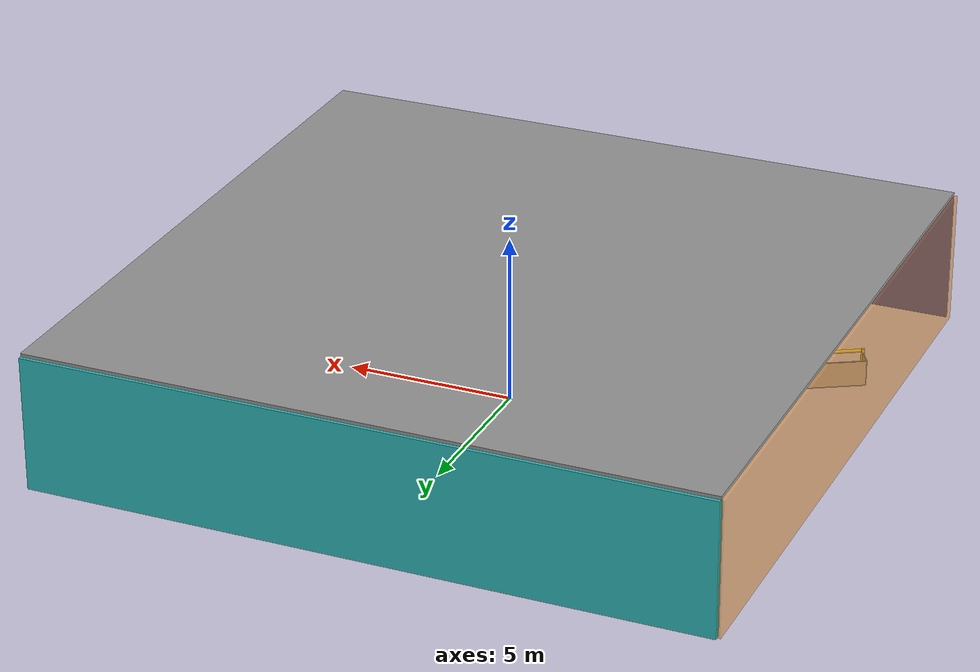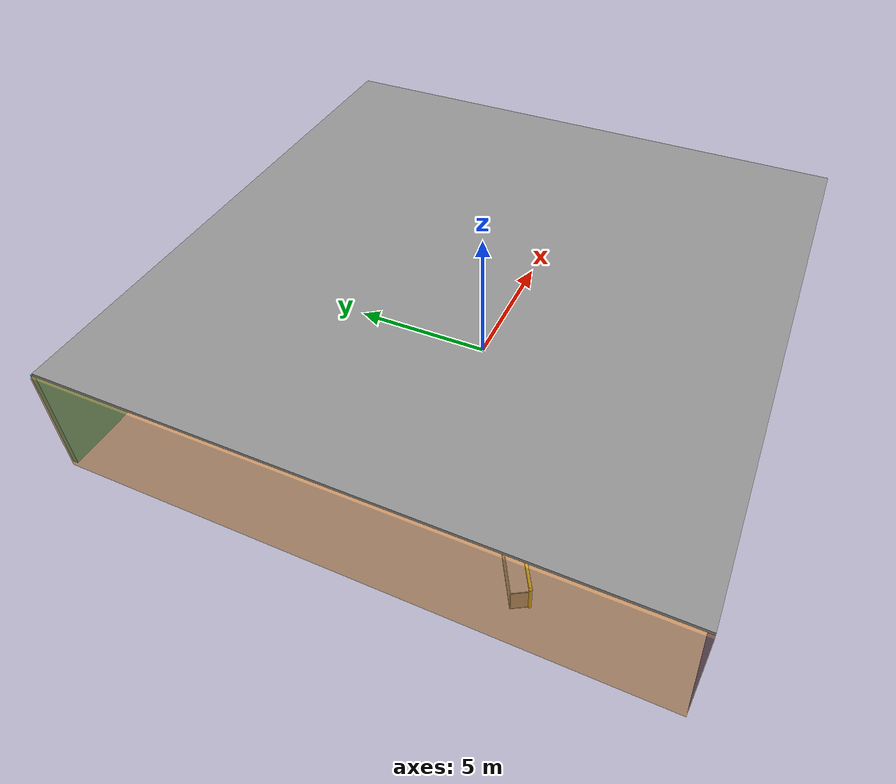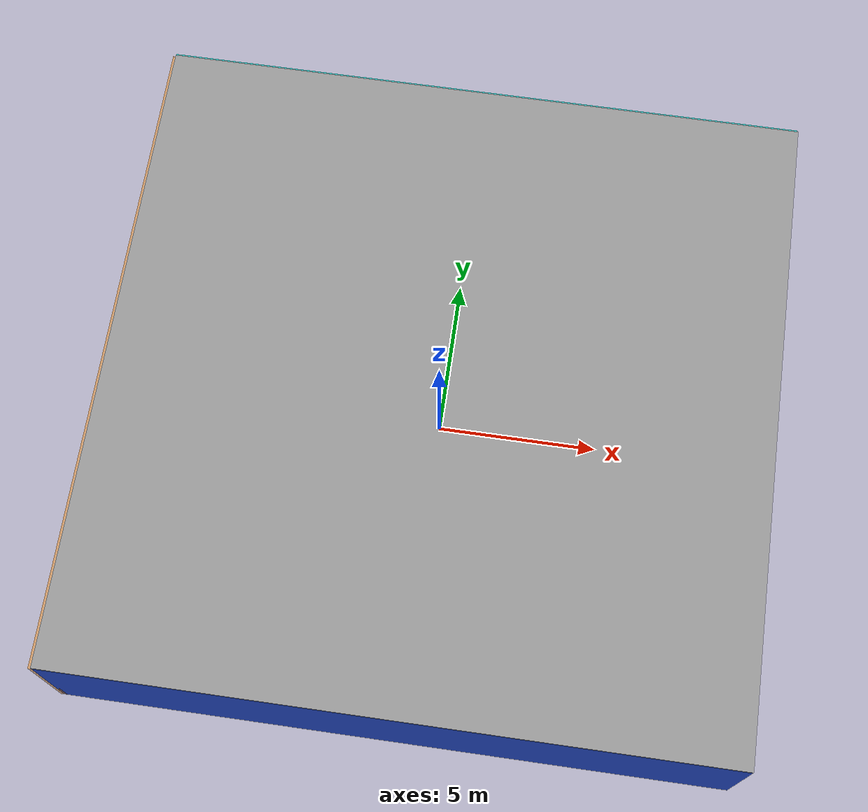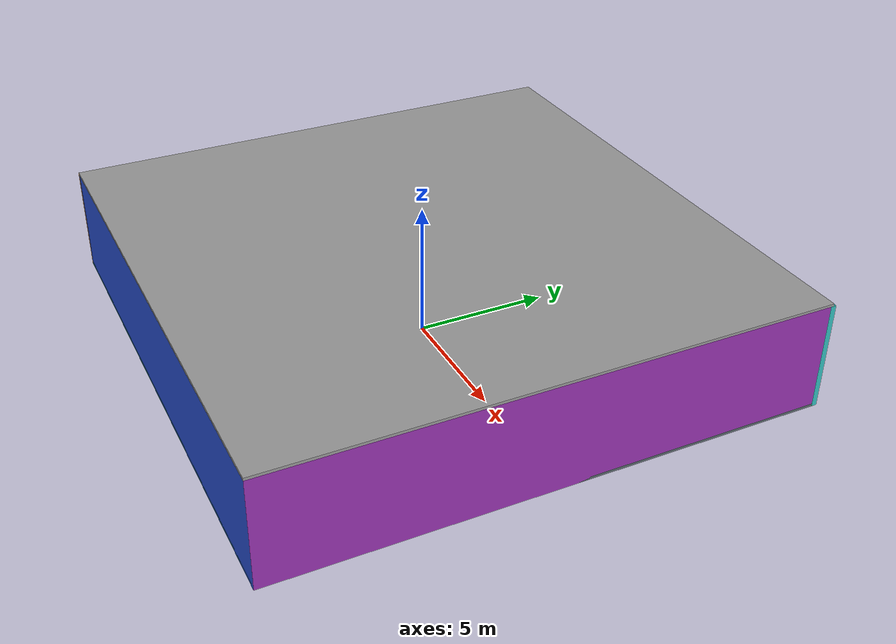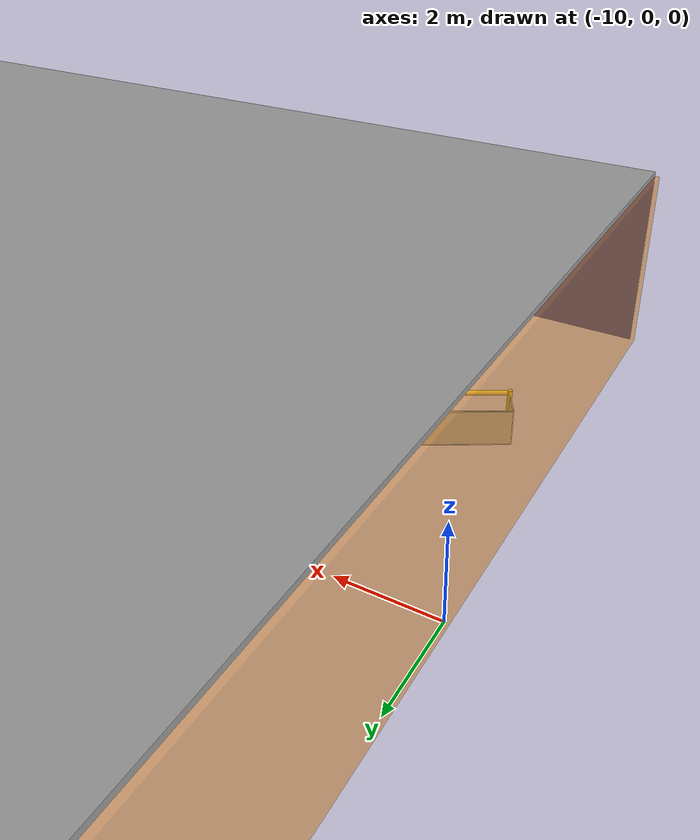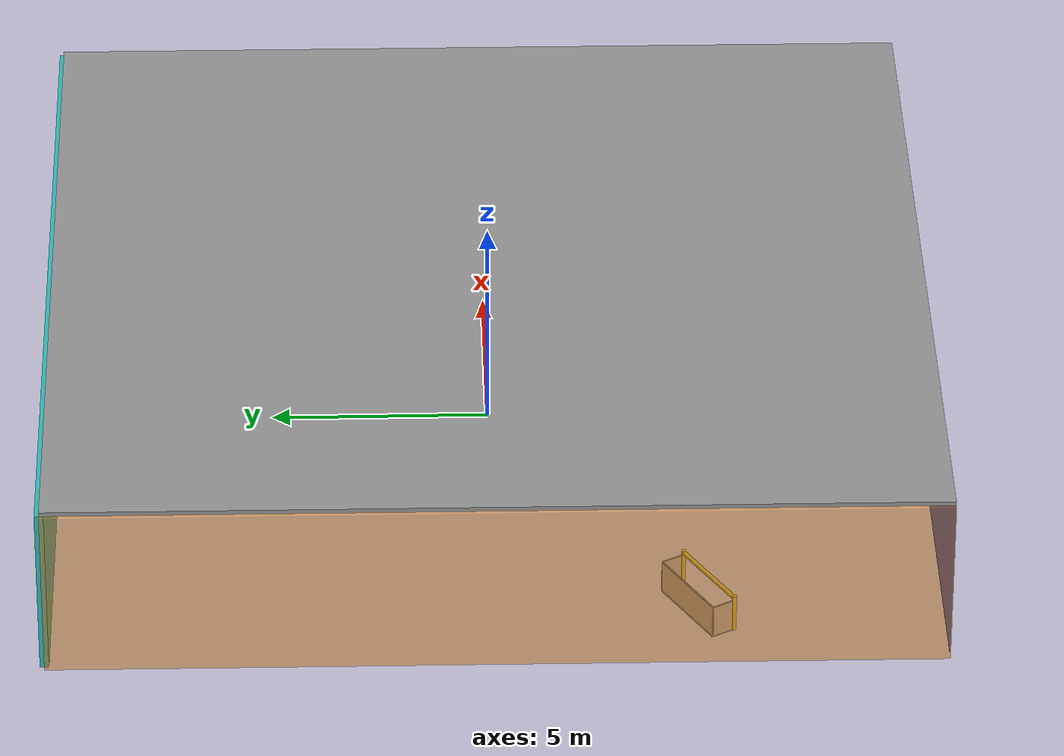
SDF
<sdf version="1.4">
 <world name="default">
  <physics type="ode">
   <max_step_size>0.001</max_step_size>
   <real_time_factor>1</real_time_factor>
   <real_time_update_rate>1000</real_time_update_rate>
   <gravity>0 0 -9.8</gravity>
  </physics>
  <scene><ambient>0.4 0.4 0.4 1</ambient><background>0.7 0.7 0.7 1</background><shadows>1</shadows></scene>
  <model name="Surrounding">
   <static>1</static>
   <link name="Ceiling">
    <collision name="Ceiling_Collision"><geometry><box><size>20 20 0.1</size></box></geometry></collision>
    <visual name="Ceiling_Visual">
     <geometry><box><size>20 20 0.1</size></box></geometry>
     <material>
      <script><uri>file://media/materials/scripts/gazebo.material</uri><name>Gazebo/Grey</name></script>
     </material>
    </visual>
    <pose>0 0 4.05 0 0 0</pose>
   </link>
   <link name="Wall_South">
    <collision name="Wall_South_Collision">
     <geometry><box><size>20 0 4</size></box></geometry>
     <pose>0 0 2 0 -0 0</pose>
    </collision>
    <visual name="Wall_South_Visual">
     <pose>0 0 2 0 -0 0</pose>
     <geometry><box><size>20 0 4</size></box></geometry>
     <material>
      <script><uri>file://media/materials/scripts/gazebo.material</uri><name>Gazebo/Blue</name></script>
     </material>
    </visual>
    <velocity_decay><linear>0</linear><angular>0</angular></velocity_decay>
    <pose>0 -10 0 0 -0 0</pose>
   </link>
   <link name="Wall_East">
    <collision name="Wall_21_Collision">
     <geometry><box><size>20 0 4</size></box></geometry>
     <pose>0 0 2 0 -0 0</pose>
    </collision>
    <visual name="Wall_21_Visual">
     <pose>0 0 2 0 -0 0</pose>
     <geometry><box><size>20 0 4</size></box></geometry>
     <material>
      <script><uri>file://media/materials/scripts/gazebo.material</uri><name>Gazebo/PurpleGlow</name></script>
     </material>
    </visual>
    <velocity_decay><linear>0</linear><angular>0</angular></velocity_decay>
    <pose>10 0 0 0 -0 1.5708</pose>
   </link>
   <link name="Wall_North">
    <collision name="Wall_22_Collision">
     <geometry><box><size>20 0.2 4</size></box></geometry>
     <pose>0 0 2 0 -0 0</pose>
    </collision>
    <visual name="Wall_22_Visual">
     <pose>0 0 2 0 -0 0</pose>
     <geometry><box><size>20 0.2 4</size></box></geometry>
     <material>
      <script><uri>file://media/materials/scripts/gazebo.material</uri><name>Gazebo/TurquoiseGlow</name></script>
     </material>
    </visual>
    <velocity_decay><linear>0</linear><angular>0</angular></velocity_decay>
    <pose>0 10 0 0 -0 0</pose>
   </link>
   <link name="Wall_West">
    <collision name="Wall_23_Collision">
     <geometry><box><size>20 0.2 4</size></box></geometry>
     <pose>0 0 2 0 -0 0</pose>
    </collision>
    <visual name="Wall_23_Visual">
     <pose>0 0 2 0 -0 0</pose>
     <geometry><box><size>20 0.2 4</size></box></geometry>
     <material>
      <script>
       <uri>file://media/materials/scripts/gazebo.material</uri>
       <name>Gazebo/OrangeTransparent</name>
      </script>
     </material>
    </visual>
    <velocity_decay><linear>0</linear><angular>0</angular></velocity_decay>
    <pose>-10 0 0 0 0 -1.5708</pose>
   </link>
   <link name="Ground_link">
    <collision name="collision">
     <pose>0 0 .05 0 -0 0</pose>
     <geometry><box><size>20 20 0.1</size></box></geometry>
    </collision>
    <visual name="visual">
     <pose>0 0 .05 0 -0 0</pose>
     <geometry><box><size>20 20 0.1</size></box></geometry>
     <material>
      <script><uri>file://media/materials/scripts/gazebo.material</uri><name>Gazebo/GreenTransparent</name></script>
     </material>
    </visual>
   </link>
   <static>1</static>
  </model>
  <spherical_coordinates>
   <surface_model>EARTH_WGS84</surface_model>
   <latitude_deg>0</latitude_deg>
   <longitude_deg>0</longitude_deg>
   <elevation>0</elevation>
   <heading_deg>0</heading_deg>
  </spherical_coordinates>
  <light name="lightball_0" type="diffuse">
   <diffuse>0.8 0.8 0.8 1</diffuse>
   <specular>0.2 0.2 0.2 1</specular>
   <attenuation>
    <range>100</range>
    <constant>0.7</constant>
    <linear>0.01</linear>
    <quadratic>0.001</quadratic>
   </attenuation>
   <direction>-0.5 0.1 -0.9</direction>
   <pose>-0.124362235805 -3.78643455841 1.44246770245 0 0 0</pose>
  </light>
  <light name="lightball_1" type="diffuse">
   <diffuse>0.8 0.8 0.8 1</diffuse>
   <specular>0.2 0.2 0.2 1</specular>
   <attenuation>
    <range>100</range>
    <constant>0.7</constant>
    <linear>0.01</linear>
    <quadratic>0.001</quadratic>
   </attenuation>
   <direction>-0.5 0.1 -0.9</direction>
   <pose>-0.21622997855 -2.53523954784 3.54873695443 0 0 0</pose>
  </light>
  <light name="lightball_2" type="diffuse">
   <diffuse>0.8 0.8 0.8 1</diffuse>
   <specular>0.2 0.2 0.2 1</specular>
   <attenuation>
    <range>100</range>
    <constant>0.7</constant>
    <linear>0.01</linear>
    <quadratic>0.001</quadratic>
   </attenuation>
   <direction>-0.5 0.1 -0.9</direction>
   <pose>0.908964830927 8.85819410974 2.97558850196 0 0 0</pose>
  </light>
  <light name="lightball_3" type="diffuse">
   <diffuse>0.8 0.8 0.8 1</diffuse>
   <specular>0.2 0.2 0.2 1</specular>
   <attenuation>
    <range>100</range>
    <constant>0.7</constant>
    <linear>0.01</linear>
    <quadratic>0.001</quadratic>
   </attenuation>
   <direction>-0.5 0.1 -0.9</direction>
   <pose>7.8656157583 8.09597167013 1.71378221516 0 0 0</pose>
  </light>
  <light name="lightball_4" type="diffuse">
   <diffuse>0.8 0.8 0.8 1</diffuse>
   <specular>0.2 0.2 0.2 1</specular>
   <attenuation>
    <range>100</range>
    <constant>0.7</constant>
    <linear>0.01</linear>
    <quadratic>0.001</quadratic>
   </attenuation>
   <direction>-0.5 0.1 -0.9</direction>
   <pose>-3.46769039821 8.6038369461 3.69763435529 0 0 0</pose>
  </light>
  <light name="lightball_5" type="diffuse">
   <diffuse>0.8 0.8 0.8 1</diffuse>
   <specular>0.2 0.2 0.2 1</specular>
   <attenuation>
    <range>100</range>
    <constant>0.7</constant>
    <linear>0.01</linear>
    <quadratic>0.001</quadratic>
   </attenuation>
   <direction>-0.5 0.1 -0.9</direction>
   <pose>6.68462152128 -0.153116876492 0.738698640953 0 0 0</pose>
  </light>
  <include>
   <uri>model://robocup_3Dsim_goal</uri>
   <pose>-7.95076074098 -4.74993997854 0 0 0 2.09224950268</pose>
  </include>
  <include><uri>model://cabinet</uri><pose>3.79081260361 -4.92137000943 0 0 0 1.09506805476</pose></include>
 </world>
</sdf>

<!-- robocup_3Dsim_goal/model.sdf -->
<sdf version="1.5">
  <model name="robocup_3d_goal">
    <static>true</static>
    <link name="left_post">
      <pose>0 1.05 0.45 0 0 0</pose>
      <collision name="collision">
        <geometry>
          <cylinder>
            <radius>0.05</radius>
            <length>0.9</length>
          </cylinder>
        </geometry>
      </collision>
      <visual name="visual">
        <geometry>
          <cylinder>
            <radius>0.05</radius>
            <length>0.9</length>
          </cylinder>
        </geometry>
        <material>
          <script>
            <uri>file://media/materials/scripts/gazebo.material</uri>
            <name>Gazebo/ZincYellow</name>
          </script>
        </material>
      </visual>
    </link>
    <link name="left_support_horiz_lower">
      <pose>0.30 1.05 0.01 0 0 0</pose>
      <collision name="collision">
        <geometry>
          <box>
            <size>0.50 0.02 0.02</size>
          </box>
        </geometry>
      </collision>
      <visual name="visual">
        <geometry>
          <box>
            <size>0.50 0.02 0.02</size>
          </box>
        </geometry>
        <material>
          <script>
            <uri>file://media/materials/scripts/gazebo.material</uri>
            <name>Gazebo/White</name>
          </script>
        </material>
      </visual>
    </link>
    <link name="left_support_horiz_upper">
      <pose>0.30 1.05 0.79 0 0 0</pose>
      <collision name="collision">
        <geometry>
          <box>
            <size>0.50 0.02 0.02</size>
          </box>
        </geometry>
      </collision>
      <visual name="visual">
        <geometry>
          <box>
            <size>0.50 0.02 0.02</size>
          </box>
        </geometry>
        <material>
          <script>
            <uri>file://media/materials/scripts/gazebo.material</uri>
            <name>Gazebo/White</name>
          </script>
        </material>
      </visual>
    </link>
    <link name="left_support_vertical">
      <pose>0.56 1.05 0.4 0 1.5708 0</pose>
      <collision name="collision">
        <geometry>
          <box>
            <size>0.80 0.02 0.02</size>
          </box>
        </geometry>
      </collision>
      <visual name="visual">
        <geometry>
          <box>
            <size>0.80 0.02 0.02</size>
          </box>
        </geometry>
        <material>
          <script>
            <uri>file://media/materials/scripts/gazebo.material</uri>
            <name>Gazebo/White</name>
          </script>
        </material>
      </visual>
    </link>
    <link name="right_support_horiz_lower">
      <pose>0.30 -1.05 0.01 0 0 0</pose>
      <collision name="collision">
        <geometry>
          <box>
            <size>0.50 0.02 0.02</size>
          </box>
        </geometry>
      </collision>
      <visual name="visual">
        <geometry>
          <box>
            <size>0.50 0.02 0.02</size>
          </box>
        </geometry>
        <material>
          <script>
            <uri>file://media/materials/scripts/gazebo.material</uri>
            <name>Gazebo/White</name>
          </script>
        </material>
      </visual>
    </link>
    <link name="right_support_horiz_upper">
      <pose>0.30 -1.05 0.79 0 0 0</pose>
      <collision name="collision">
        <geometry>
          <box>
            <size>0.50 0.02 0.02</size>
          </box>
        </geometry>
      </collision>
      <visual name="visual">
        <geometry>
          <box>
            <size>0.50 0.02 0.02</size>
          </box>
        </geometry>
        <material>
          <script>
            <uri>file://media/materials/scripts/gazebo.material</uri>
            <name>Gazebo/White</name>
          </script>
        </material>
      </visual>
    </link>
    <link name="right_support_vertical">
      <pose>0.56 -1.05 0.4 0 1.5708 0</pose>
      <collision name="collision">
        <geometry>
          <box>
            <size>0.80 0.02 0.02</size>
          </box>
        </geometry>
      </collision>
      <visual name="visual">
        <geometry>
          <box>
            <size>0.80 0.02 0.02</size>
          </box>
        </geometry>
        <material>
          <script>
            <uri>file://media/materials/scripts/gazebo.material</uri>
            <name>Gazebo/White</name>
          </script>
        </material>
      </visual>
    </link>
    <link name="center_support_horiz_lower">
      <pose>0.56 0 0.01 0 1.5708 0</pose>
      <collision name="collision">
        <geometry>
          <box>
            <size>0.02 2.08 0.02</size>
          </box>
        </geometry>
      </collision>
      <visual name="visual">
        <geometry>
          <box>
            <size>0.02 2.08 0.02</size>
          </box>
        </geometry>
        <material>
          <script>
            <uri>file://media/materials/scripts/gazebo.material</uri>
            <name>Gazebo/White</name>
          </script>
        </material>
      </visual>
    </link>
    <link name="center_support_horiz_upper">
      <pose>0.56 0 0.79 0 1.5708 0</pose>
      <collision name="collision">
        <geometry>
          <box>
            <size>0.02 2.08 0.02</size>
          </box>
        </geometry>
      </collision>
      <visual name="visual">
        <geometry>
          <box>
            <size>0.02 2.08 0.02</size>
          </box>
        </geometry>
        <material>
          <script>
            <uri>file://media/materials/scripts/gazebo.material</uri>
            <name>Gazebo/White</name>
          </script>
        </material>
      </visual>
    </link>
    <link name="right_post">
      <pose>0 -1.05 0.45 0 0 0</pose>
      <collision name="collision">
        <geometry>
          <cylinder>
            <radius>0.05</radius>
            <length>0.9</length>
          </cylinder>
        </geometry>
      </collision>
      <visual name="visual">
        <geometry>
          <cylinder>
            <radius>0.05</radius>
            <length>0.9</length>
          </cylinder>
        </geometry>
        <material>
          <script>
            <uri>file://media/materials/scripts/gazebo.material</uri>
            <name>Gazebo/ZincYellow</name>
          </script>
        </material>
      </visual>
    </link>
    <link name="crossbar">
      <pose>0 0 0.85 1.57 1.57 0</pose>
      <collision name="collision">
        <geometry>
          <cylinder>
            <radius>0.05</radius>
            <length>2.0</length>
          </cylinder>
        </geometry>
      </collision>
      <visual name="visual">
        <geometry>
          <cylinder>
            <radius>0.05</radius>
            <length>2.0</length>
          </cylinder>
        </geometry>
        <material>
          <script>
            <uri>file://media/materials/scripts/gazebo.material</uri>
            <name>Gazebo/ZincYellow</name>
          </script>
        </material>
      </visual>
    </link>
    <link name="center_net">
      <pose>0.56 0 0.40 0 0 0</pose>
      <collision name="collision">
        <geometry>
          <box>
            <size>0.01 2.1 0.80</size>
          </box>
        </geometry>
      </collision>
      <visual name="visual">
        <geometry>
          <box>
            <size>0.01 2.1 0.80</size>
          </box>
        </geometry>
        <material>
          <script>
            <uri>model://../model_source/models/robocup09_spl_field/materials/scripts/</uri>
            <uri>model://../model_source/models/robocup09_spl_field/materials/textures/</uri>
            <name>RoboCup/Net</name>
          </script>
        </material>
      </visual>
    </link>
    <link name="left_net">
      <pose>0.30 1.05 0.40 0 0 0</pose>
      <collision name="collision">
        <geometry>
          <box>
            <size>0.50 0.01 0.76</size>
          </box>
        </geometry>
      </collision>
      <visual name="visual">
        <geometry>
          <box>
            <size>0.50 0.01 0.76</size>
          </box>
        </geometry>
        <material>
          <script>
            <uri>model://../model_source/models/robocup09_spl_field/materials/scripts/</uri>
            <uri>model://../model_source/models/robocup09_spl_field/materials/textures/</uri>
            <name>RoboCup/Net</name>
          </script>
        </material>
      </visual>
    </link>
    <link name="right_net">
      <pose>0.30 -1.05 0.40 0 0 0</pose>
      <collision name="collision">
        <geometry>
          <box>
            <size>0.50 0.01 0.76</size>
          </box>
        </geometry>
      </collision>
      <visual name="visual">
        <geometry>
          <box>
            <size>0.50 0.01 0.76</size>
          </box>
        </geometry>
        <material>
          <script>
            <uri>model://../model_source/models/robocup09_spl_field/materials/scripts/</uri>
            <uri>model://../model_source/models/robocup09_spl_field/materials/textures/</uri>
            <name>RoboCup/Net</name>
          </script>
        </material>
      </visual>
    </link>
  </model>
</sdf>

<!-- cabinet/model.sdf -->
<sdf version="1.5">
  <model name="cabinet">
    <static>true</static>
    <link name="cabinet_bottom_plate">
      <inertial>
        <pose>0 0 -1 0 0 0</pose>
        <inertia>
          <ixx>2.050000</ixx>
          <ixy>0</ixy>
          <ixz>0</ixz>
          <iyy>2.050000</iyy>
          <iyz>0</iyz>
          <izz>2.050000</izz>
        </inertia>
        <mass>25.000000</mass>
      </inertial>
      <collision name="cabinet_bottom_plate_geom">
        <pose>0 0 0.010000 0 0 0</pose>
        <geometry>
          <box>
            <size>0.450000 0.450000 0.020000</size>
          </box>
        </geometry>
      </collision>
      <visual name="cabinet_bottom_plate_geom_visual">
        <pose>0 0 0.010000 0 0 0</pose>
        <geometry>
          <box>
            <size>0.450000 0.450000 0.020000</size>
          </box>
        </geometry>
        <material>
          <script>
            <uri>model://media/materials/scripts/gazebo.material</uri>
            <name>Gazebo/Wood</name>
          </script>
        </material>
      </visual>
      <collision name="cabinet_bottom_plate_geom_cabinet_back_plate">
        <pose>0.235000 0 0.510000 0 0 0</pose>
        <geometry>
          <box>
            <size>0.020000 0.450000 1.020000</size>
          </box>
        </geometry>
      </collision>
      <visual name="cabinet_bottom_plate_geom_cabinet_back_plate_visual">
        <pose>0.235000 0 0.510000 0 0 0</pose>
        <geometry>
          <box>
            <size>0.020000 0.450000 1.020000</size>
          </box>
        </geometry>
        <material>
          <script>
            <uri>model://media/materials/scripts/gazebo.material</uri>
            <name>Gazebo/Wood</name>
          </script>
        </material>
      </visual>
      <collision name="cabinet_bottom_plate_geom_cabinet_left_plate">
        <pose>0 0.235000 0.510000 0 0 0</pose>
        <geometry>
          <box>
            <size>0.450000 0.020000 1.020000</size>
          </box>
        </geometry>
      </collision>
      <visual name="cabinet_bottom_plate_geom_cabinet_left_plate_visual">
        <pose>0 0.235000 0.510000 0 0 0</pose>
        <geometry>
          <box>
            <size>0.450000 0.020000 1.020000</size>
          </box>
        </geometry>
        <material>
          <script>
            <uri>model://media/materials/scripts/gazebo.material</uri>
            <name>Gazebo/Wood</name>
          </script>
        </material>
      </visual>
      <collision name="cabinet_bottom_plate_geom_cabinet_middle_plate">
        <pose>0 0 0.510000 0 0 0</pose>
        <geometry>
          <box>
            <size>0.450000 0.450000 0.020000</size>
          </box>
        </geometry>
      </collision>
      <visual name="cabinet_bottom_plate_geom_cabinet_middle_plate_visual">
        <pose>0 0 0.510000 0 0 0</pose>
        <geometry>
          <box>
            <size>0.450000 0.450000 0.020000</size>
          </box>
        </geometry>
        <material>
          <script>
            <uri>model://media/materials/scripts/gazebo.material</uri>
            <name>Gazebo/Wood</name>
          </script>
        </material>
      </visual>
      <collision name="cabinet_bottom_plate_geom_cabinet_right_plate">
        <pose>0 -0.235000 0.510000 0 0 0</pose>
        <geometry>
          <box>
            <size>0.450000 0.020000 1.020000</size>
          </box>
        </geometry>
      </collision>
      <visual name="cabinet_bottom_plate_geom_cabinet_right_plate_visual">
        <pose>0 -0.235000 0.510000 0 0 0</pose>
        <geometry>
          <box>
            <size>0.450000 0.020000 1.020000</size>
          </box>
        </geometry>
        <material>
          <script>
            <uri>model://media/materials/scripts/gazebo.material</uri>
            <name>Gazebo/Wood</name>
          </script>
        </material>
      </visual>
      <collision name="cabinet_bottom_plate_geom_cabinet_top_plate">
        <pose>0 0 1.010000 0 0 0</pose>
        <geometry>
          <box>
            <size>0.450000 0.450000 0.020000</size>
          </box>
        </geometry>
      </collision>
      <visual name="cabinet_bottom_plate_geom_cabinet_top_plate_visual">
        <pose>0 0 1.010000 0 0 0</pose>
        <geometry>
          <box>
            <size>0.450000 0.450000 0.020000</size>
          </box>
        </geometry>
        <material>
          <script>
            <uri>model://media/materials/scripts/gazebo.material</uri>
            <name>Gazebo/Wood</name>
          </script>
        </material>
      </visual>
    </link>
  </model>
</sdf>
